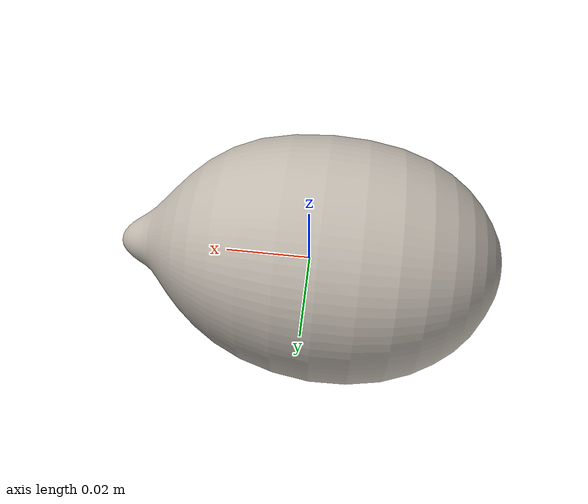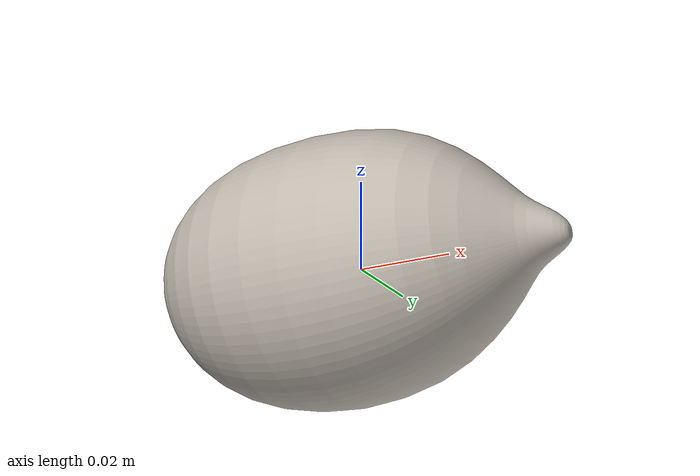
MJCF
<mujoco model="lime">
    <compiler angle="radian" meshdir="../meshes/" texturedir="../textures/" autolimits="true" inertiafromgeom="false"/>
    <asset>
        <mesh name="LimePeel" file="obj/LimePeel.obj" />
        <material name="M_LimePeel" texture="T_LimePeel"/>
		<texture name="T_LimePeel" type="2d" file="T_LimePeel.png"/>
    </asset>
    <worldbody>
        <body name="lime">
            <freejoint />
            <inertial mass="0.006688935682177544" pos="-0.0020861164666712284 -0.00036476828972809017 3.453579483903013e-05" quat="0.015134597197175026 0.9998217821121216 -0.00026754793361760676 0.011283377185463905" diaginertia="3.541381829563761e-06 6.077583293517819e-06 6.11683799434104e-06"/>
            <geom name="Lime" pos="0.0 0.0 0.0" quat="1.0 0.0 0.0 0.0" type="mesh" mesh="LimePeel" material="M_LimePeel"/>
        </body>
    </worldbody>
    <equality />
    <contact />
</mujoco>
